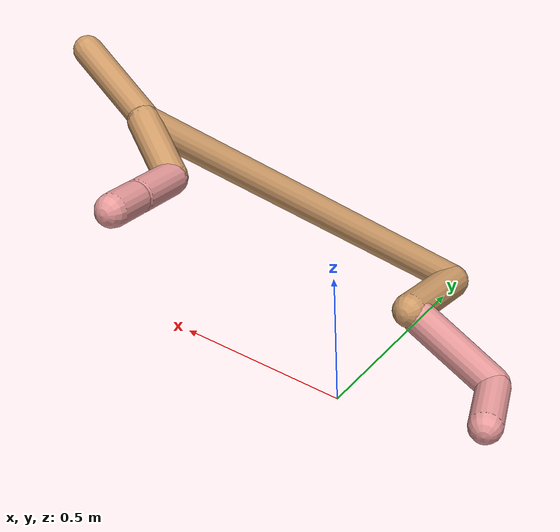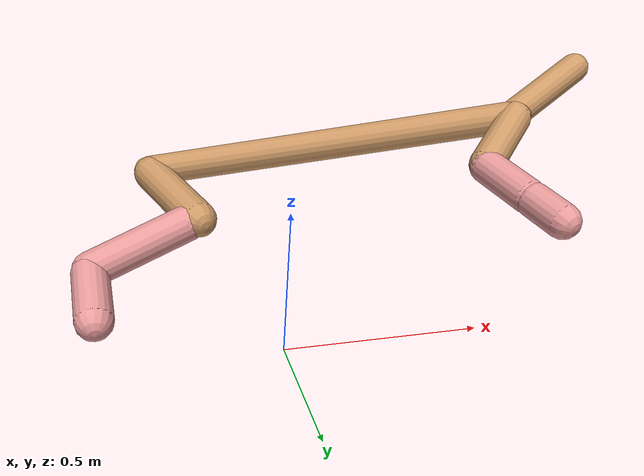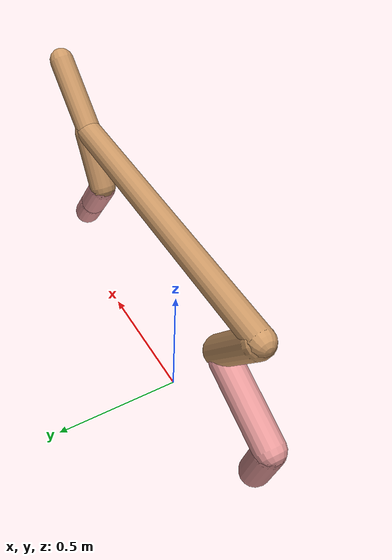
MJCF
<mujoco model="cheetah">
  <compiler angle="radian" coordinate="local" inertiafromgeom="true" settotalmass="14" />
  <default>
    <joint armature=".1" damping=".01" limited="true" solimplimit="0 .8 .03" solreflimit=".02 1" stiffness="8" />
    <geom conaffinity="0" condim="3" contype="1" friction="0.8 .1 .1" rgba="0.8 0.6 .4 1" solimp="0.0 0.8 0.01" solref="0.02 1" />
    <motor ctrllimited="true" ctrlrange="-1 1" />
  </default>
  <size nstack="300000" nuser_geom="1" />
  <option gravity="0 0 -9.81" timestep="0.01" />
  <worldbody>
    <body name="torso" pos="0.0 0.0 0.7942789030722587">
      <joint armature="0" axis="1 0 0" damping="0" limited="false" name="ignorex" pos="0 0 0" stiffness="0" type="slide" />
      <joint armature="0" axis="0 0 1" damping="0" limited="false" name="ignorez" pos="0 0 0" stiffness="0" type="slide" />
      <joint armature="0" axis="0 1 0" damping="0" limited="false" name="ignorey" pos="0 0 0" stiffness="0" type="hinge" />
      <geom fromto="-0.5 0.0 0.0 0.714644095005921 0.0 0.0" name="torso" size="0.04917185051574038" type="capsule" />
      <geom axisangle="0 1 0 .87" name="head" pos="0.8146440950059209 0.0 0.1" size="0.046614464321607464 0.15" type="capsule" />

      <body name="bthigh" pos="-.5 0 0">
        <joint axis="0 1 0" damping="6" name="bthigh" pos="0 0 0" range="-.52 1.05" stiffness="240" type="hinge" />
        <geom axisangle="0 1 0 -3.8" name="bthigh" pos="0.10706357199154058 0.0 -0.13918264358900276" size="0.057593917131540495 0.15658511944531991" type="capsule" />
        <body name="bshin" pos="0.17412714398308116 0.0 -0.2683652871780055">
          <joint axis="0 1 0" damping="4.5" name="bshin" pos="0 0 0" range="-.785 .785" stiffness="180" type="hinge" />
          <geom axisangle="0 1 0 -2.03" name="bshin" pos="-0.15071935776849243 0.0 -0.07535967888424622" rgba="0.9 0.6 0.6 1" size="0.057593917131540495 0.16198460632274475" type="capsule" />
          <body name="bfoot" pos="-0.30143871553698487 0.0 -0.15071935776849243">
            <joint axis="0 1 0" damping="3" name="bfoot" pos="0 0 0" range="-.4 .785" stiffness="120" type="hinge" />
            <geom axisangle="0 1 0 -.27" name="bfoot" pos="0.03221908200729384 0.0 -0.10417503182358344" rgba="0.9 0.6 0.6 1" size="0.057593917131540495 0.1015103532955867" type="capsule" />
            <inertial mass="10" />
          </body>
        </body>
      </body>
      <body name="fthigh" pos="0.714644095005921 0.0 0.0">
        <joint axis="0 1 0" damping="4.5" name="fthigh" pos="0 0 0" range="-1.5 0.8" stiffness="180" type="hinge" />
        <geom axisangle="0 1 0 .52" name="fthigh" pos="-0.05971560146212802 0.0 -0.10236960250650518" size="0.052324960357835286 0.11258922419249058" type="capsule" />
        <body name="fshin" pos="-0.11943120292425605 0.0 -0.20473920501301035">
          <joint axis="0 1 0" damping="3" name="fshin" pos="0 0 0" range="-1.2 1.1" stiffness="120" type="hinge" />
          <geom axisangle="0 1 0 -.6" name="fshin" pos="0.05547568765575366 0.0 -0.0768124906002743" rgba="0.9 0.6 0.6 1" size="0.052324960357835286 0.08973276514589473" type="capsule" />
          <body name="ffoot" pos="0.11095137531150732 0.0 -0.1536249812005486">
            <joint axis="0 1 0" damping="1.5" name="ffoot" pos="0 0 0" range="-3.1 -0.3" stiffness="60" type="hinge" />
            <geom axisangle="0 1 0 -.6" name="ffoot" pos="0.039190904230258616 0.0 -0.06096362880262452" rgba="0.9 0.6 0.6 1" size="0.052324960357835286 0.059257486417100304" type="capsule" />
            <inertial mass="10" />
          </body>
        </body>
      </body>
    </body>
  </worldbody>
  <actuator>
    <motor gear="120" joint="bthigh" name="bthigh" />
    <motor gear="90" joint="bshin" name="bshin" />
    <motor gear="60" joint="bfoot" name="bfoot" />
    <motor gear="120" joint="fthigh" name="fthigh" />
    <motor gear="60" joint="fshin" name="fshin" />
    <motor gear="30" joint="ffoot" name="ffoot" />
  </actuator>
</mujoco>
